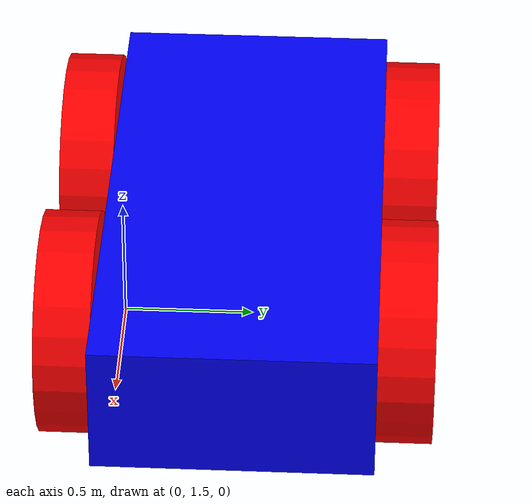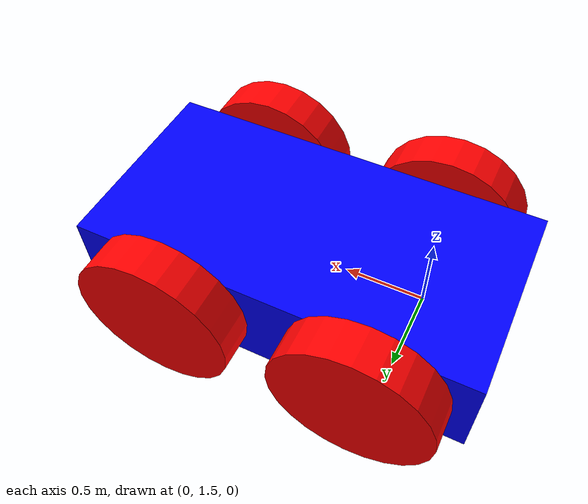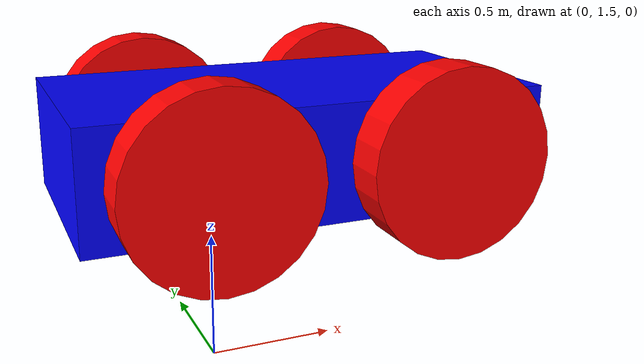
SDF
<?xml version="1.0" ?>
<sdf version="1.7">
    <model name='vehicle_blue' canonical_link='chassis'>
        <pose>0 2 0.325 0 -0 0</pose>

        <!--chassis-->
        <link name='chassis'>
            <pose relative_to='__model__'>0.5 0 0.4 0 0 0</pose>
            <inertial> <!--inertial properties of the link mass, inertia matix-->
                <mass>1.14395</mass>
                <inertia>
                    <ixx>0.095329</ixx>
                    <ixy>0</ixy>
                    <ixz>0</ixz>
                    <iyy>0.381317</iyy>
                    <iyz>0</iyz>
                    <izz>0.476646</izz>
                </inertia>
            </inertial>
            <visual name='visual'>
                <geometry>
                    <box>
                        <size>2.0 1.0 0.5</size>
                    </box>
                </geometry>
                <!--Color of the link-->
                <material>
                    <ambient>0.0 0.0 1.0 1</ambient>
                    <diffuse>0.0 0.0 1.0 1</diffuse>
                    <specular>0.0 0.0 1.0 1</specular>
                </material>
            </visual>
            <collision name='collision'>
                <geometry>
                    <box>
                        <size>2.0 1.0 0.5</size>
                    </box>
                </geometry>
            </collision>
            <sensor name="imu_sensor" type="imu">
                <always_on>1</always_on>
                <update_rate>250</update_rate>
                <visualize>true</visualize>
                <topic>imu</topic>
            </sensor>
                <sensor name="navsat" type="navsat">
                <always_on>1</always_on>
                <update_rate>1</update_rate>
                <topic>navsat</topic>
            </sensor>
        </link>

        <!--Left wheel-->
        <link name='left_wheel'>
            <pose relative_to="chassis">-0.5 0.6  0 -1.5707 0 0</pose> <!--angles are in radian-->
            <inertial>
                <mass>1</mass>
                <inertia>
                    <ixx>0.043333</ixx>
                    <ixy>0</ixy>
                    <ixz>0</ixz>
                    <iyy>0.043333</iyy>
                    <iyz>0</iyz>
                    <izz>0.08</izz>
                </inertia>
            </inertial>
            <visual name='visual'>
                <geometry>
                    <cylinder>
                        <radius>0.4</radius>
                        <length>0.2</length>
                    </cylinder>
                </geometry>
                <material>
                    <ambient>1.0 0.0 0.0 1</ambient>
                    <diffuse>1.0 0.0 0.0 1</diffuse>
                    <specular>1.0 0.0 0.0 1</specular>
                </material>
            </visual>
            <collision name='collision'>
                <geometry>
                    <cylinder>
                        <radius>0.4</radius>
                        <length>0.2</length>
                    </cylinder>
                </geometry>
            </collision>
        </link>

        <!--The same as left wheel but with different position-->
        <link name='right_wheel'>
            <pose relative_to="chassis">-0.5 -0.6 0 -1.5707 0 0</pose> <!--angles are in radian-->
            <inertial>
                <mass>1</mass>
                <inertia>
                    <ixx>0.043333</ixx>
                    <ixy>0</ixy>
                    <ixz>0</ixz>
                    <iyy>0.043333</iyy>
                    <iyz>0</iyz>
                    <izz>0.08</izz>
                </inertia>
            </inertial>
            <visual name='visual'>
                <geometry>
                    <cylinder>
                        <radius>0.4</radius>
                        <length>0.2</length>
                    </cylinder>
                </geometry>
                <material>
                    <ambient>1.0 0.0 0.0 1</ambient>
                    <diffuse>1.0 0.0 0.0 1</diffuse>
                    <specular>1.0 0.0 0.0 1</specular>
                </material>
            </visual>
            <collision name='collision'>
                <geometry>
                    <cylinder>
                        <radius>0.4</radius>
                        <length>0.2</length>
                    </cylinder>
                </geometry>
            </collision>
        </link>

        <!--Left wheel-->
        <link name='left_wheelB'>
            <pose relative_to="chassis">0.5 0.6  0 -1.5707 0 0</pose> <!--angles are in radian-->
            <inertial>
                <mass>1</mass>
                <inertia>
                    <ixx>0.043333</ixx>
                    <ixy>0</ixy>
                    <ixz>0</ixz>
                    <iyy>0.043333</iyy>
                    <iyz>0</iyz>
                    <izz>0.08</izz>
                </inertia>
            </inertial>
            <visual name='visual'>
                <geometry>
                    <cylinder>
                        <radius>0.4</radius>
                        <length>0.2</length>
                    </cylinder>
                </geometry>
                <material>
                    <ambient>1.0 0.0 0.0 1</ambient>
                    <diffuse>1.0 0.0 0.0 1</diffuse>
                    <specular>1.0 0.0 0.0 1</specular>
                </material>
            </visual>
            <collision name='collision'>
                <geometry>
                    <cylinder>
                        <radius>0.4</radius>
                        <length>0.2</length>
                    </cylinder>
                </geometry>
            </collision>
        </link>

        <!--The same as left wheel but with different position-->
        <link name='right_wheelB'>
            <pose relative_to="chassis">0.5 -0.6 0 -1.5707 0 0</pose> <!--angles are in radian-->
            <inertial>
                <mass>1</mass>
                <inertia>
                    <ixx>0.043333</ixx>
                    <ixy>0</ixy>
                    <ixz>0</ixz>
                    <iyy>0.043333</iyy>
                    <iyz>0</iyz>
                    <izz>0.08</izz>
                </inertia>
            </inertial>
            <visual name='visual'>
                <geometry>
                    <cylinder>
                        <radius>0.4</radius>
                        <length>0.2</length>
                    </cylinder>
                </geometry>
                <material>
                    <ambient>1.0 0.0 0.0 1</ambient>
                    <diffuse>1.0 0.0 0.0 1</diffuse>
                    <specular>1.0 0.0 0.0 1</specular>
                </material>
            </visual>
            <collision name='collision'>
                <geometry>
                    <cylinder>
                        <radius>0.4</radius>
                        <length>0.2</length>
                    </cylinder>
                </geometry>
            </collision>
        </link>

        <!--left wheel joint-->
        <joint name='left_wheel_joint' type='revolute'>
            <pose relative_to='left_wheel'/>
            <parent>chassis</parent>
            <child>left_wheel</child>
            <axis>
                <xyz expressed_in='__model__'>0 1 0</xyz> <!--can be descired to any frame or even arbitrary frames-->
                <limit>
                    <lower>-1.79769e+308</lower>    <!--negative infinity-->
                    <upper>1.79769e+308</upper>     <!--positive infinity-->
                </limit>
            </axis>
        </joint>

        <!--right wheel joint-->
        <joint name='right_wheel_joint' type='revolute'>
            <pose relative_to='right_wheel'/>
            <parent>chassis</parent>
            <child>right_wheel</child>
            <axis>
                <xyz expressed_in='__model__'>0 1 0</xyz>
                <limit>
                    <lower>-1.79769e+308</lower>    <!--negative infinity-->
                    <upper>1.79769e+308</upper>     <!--positive infinity-->
                </limit>
            </axis>
        </joint>

        <!--left wheel joint-->
        <joint name='left_wheel_jointB' type='revolute'>
            <pose relative_to='left_wheelB'/>
            <parent>chassis</parent>
            <child>left_wheelB</child>
            <axis>
                <xyz expressed_in='__model__'>0 1 0</xyz> <!--can be descired to any frame or even arbitrary frames-->
                <limit>
                    <lower>-1.79769e+308</lower>    <!--negative infinity-->
                    <upper>1.79769e+308</upper>     <!--positive infinity-->
                </limit>
            </axis>
        </joint>

        <!--right wheel joint-->
        <joint name='right_wheel_jointB' type='revolute'>
            <pose relative_to='right_wheelB'/>
            <parent>chassis</parent>
            <child>right_wheelB</child>
            <axis>
                <xyz expressed_in='__model__'>0 1 0</xyz>
                <limit>
                    <lower>-1.79769e+308</lower>    <!--negative infinity-->
                    <upper>1.79769e+308</upper>     <!--positive infinity-->
                </limit>
            </axis>
        </joint>

        <!-- Plugin -->

        <plugin
            filename="libignition-gazebo-diff-drive-system.so"
            name="ignition::gazebo::systems::DiffDrive">
            <left_joint>left_wheel_joint</left_joint>
            <right_joint>right_wheel_joint</right_joint>
            <left_joint>left_wheel_jointB</left_joint>
            <right_joint>right_wheel_jointB</right_joint>
            <wheel_separation>1.2</wheel_separation>
            <wheel_radius>0.4</wheel_radius>
            <odom_publish_frequency>100</odom_publish_frequency>
            <frame_id>world/ground_plane</frame_id>
            <topic>/model/Movingrobot_One/cmd_vel</topic>
        </plugin>
    </model>
</sdf>
